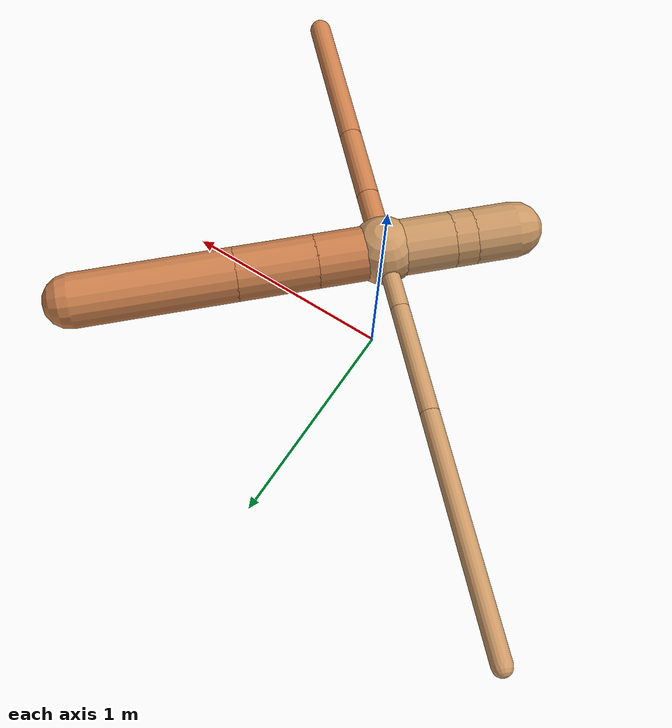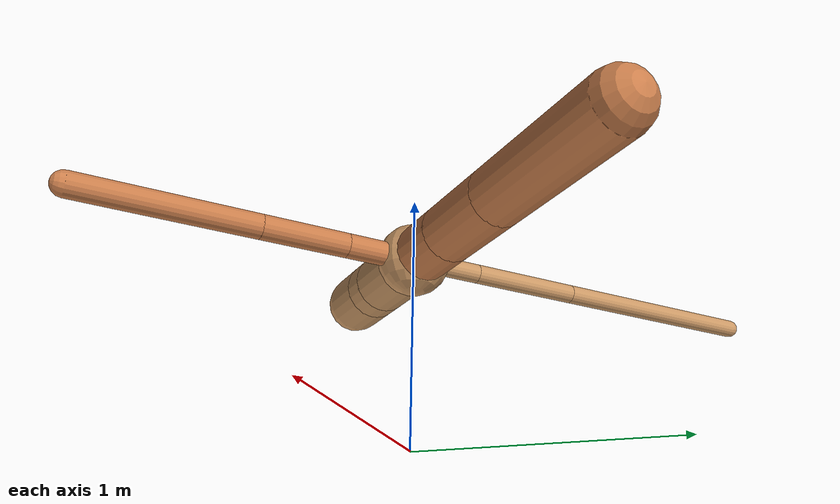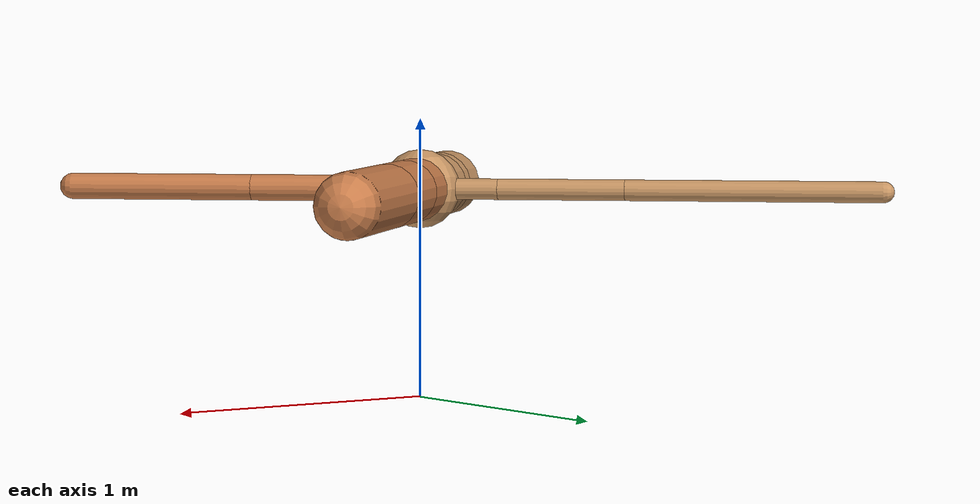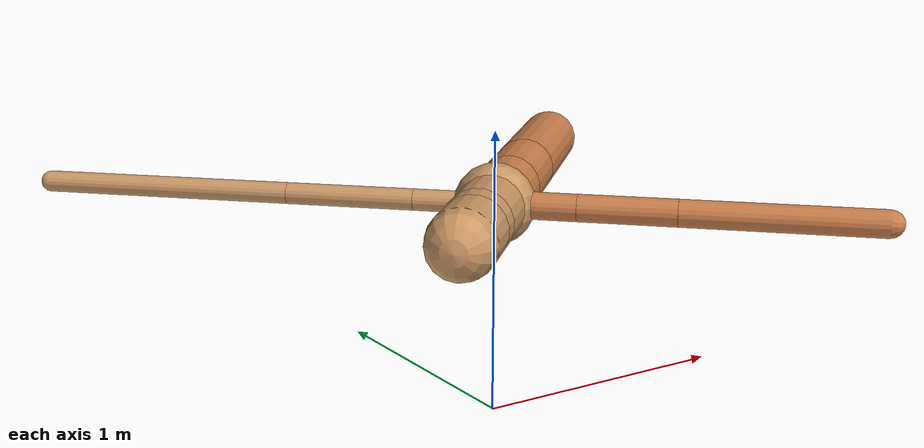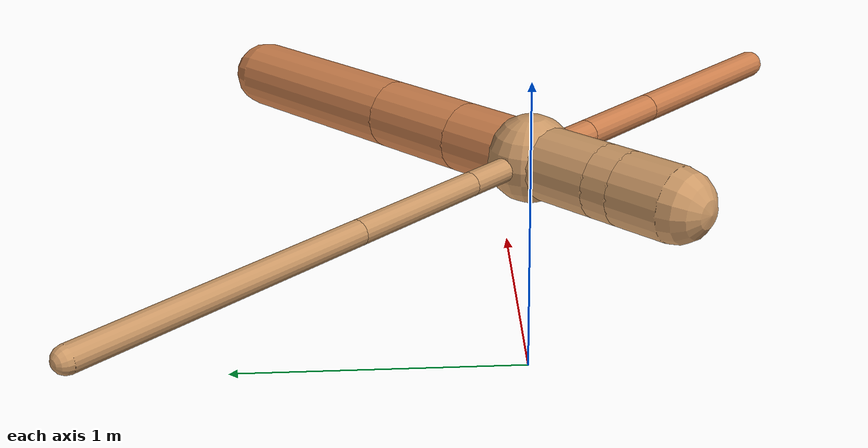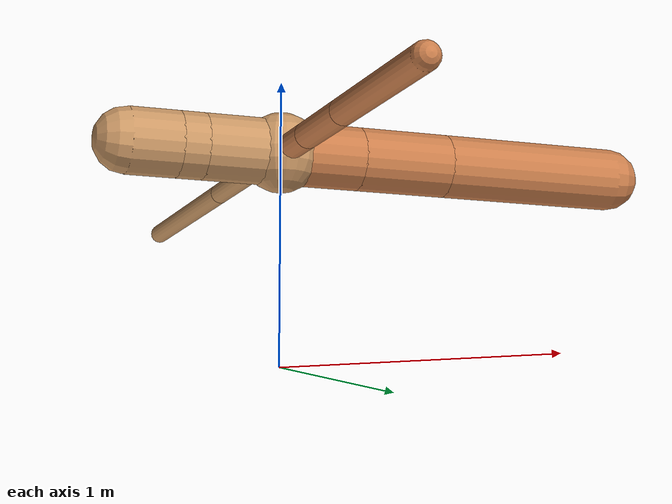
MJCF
<?xml version="1.0" ?>
<mujoco model="ant">

	<compiler angle="degree" coordinate="local" inertiafromgeom="true"/>

	<option integrator="RK4" timestep="0.01"/>

	<custom>

		<numeric data="0.0 0.0 0.55 1.0 0.0 0.0 0.0 0.0 1.0 0.0 -1.0 0.0 -1.0 0.0 1.0" name="init_qpos"/>

	</custom>

	<default>

		<joint armature="1" damping="1" limited="true"/>

		<geom conaffinity="0" condim="3" density="5.0" friction="1.5 0.1 0.1" margin="0.01" rgba="0.8 0.6 0.4 1"/>

	</default>

	<worldbody>

		<body name="torso" pos="0 0 0.75">

			<geom name="torso_geom" pos="0 0 0" size="0.14114810883831574" type="sphere"/>

			<!--joint armature="0" damping="0" limited="false" margin="0.01" name="root" pos="0 0 0" type="free"/-->

			<body name="front_left_leg" pos="0 0 0">

				<geom fromto="0 0 0 0.2 0.2 0" name="aux_1_geom" size="0.11291878633420847" type="capsule" rgba=".8 .5 .3 1"/>

				<body name="aux_1" pos="0.2 0.2 0">

					<joint axis="0 0 1" name="hip_1" pos="0.0 0.0 0.0" range="-40 40" type="hinge"/>

					<geom fromto="0 0 0 0.23382970327406616 0.23382970327406616 0" name="left_leg_geom" size="0.11291878633420847" type="capsule" rgba=".8 .5 .3 1"/>

					<body pos="0.23382970327406616 0.23382970327406616 0" name="front_left_foot">

						<joint axis="-1 1 0" name="ankle_1" pos="0.0 0.0 0.0" range="30 100" type="hinge"/>

						<geom fromto="0 0 0 0.4676594065481323 0.4676594065481323 0" name="left_ankle_geom" size="0.11291878633420847" type="capsule" rgba=".8 .5 .3 1"/>

					</body>

				</body>

			</body>

			<body name="front_right_leg" pos="0 0 0">

				<geom fromto="0 0 0 -0.2 0.2 0" name="aux_2_geom" size="0.03786041188898108" type="capsule"/>

				<body name="aux_2" pos="-0.2 0.2 0">

					<joint axis="0 0 1" name="hip_2" pos="0.0 0.0 0.0" range="-40 40" type="hinge"/>

					<geom fromto="0 0 0 -0.32345937006672626 0.32345937006672626 0" name="right_leg_geom" size="0.03786041188898108" type="capsule"/>

					<body pos="-0.32345937006672626 0.32345937006672626 0" name="front_right_foot">

						<joint axis="1 1 0" name="ankle_2" pos="0.0 0.0 0.0" range="-100 -30" type="hinge"/>

						<geom fromto="0 0 0 -0.6469187401334525 0.6469187401334525 0" name="right_ankle_geom" size="0.03786041188898108" type="capsule"/>

					</body>

				</body>

			</body>

			<body name="left_back_leg" pos="0 0 0">

				<geom fromto="0 0 0 -0.2 -0.2 0" name="aux_3_geom" size="0.11714422274795805" type="capsule"/>

				<body name="aux_3" pos="-0.2 -0.2 0">

					<joint axis="0 0 1" name="hip_3" pos="0.0 0.0 0.0" range="-40 40" type="hinge"/>

					<geom fromto="0 0 0 -0.06343370406859926 -0.06343370406859926 0" name="back_leg_geom" size="0.11714422274795805" type="capsule"/>

					<body pos="-0.06343370406859926 -0.06343370406859926 0" name="left_back_foot">

						<joint axis="-1 1 0" name="ankle_3" pos="0.0 0.0 0.0" range="-100 -30" type="hinge"/>

						<geom fromto="0 0 0 -0.12686740813719852 -0.12686740813719852 0" name="third_ankle_geom" size="0.11714422274795805" type="capsule"/>

					</body>

				</body>

			</body>

			<body name="right_back_leg" pos="0 0 0">

				<geom fromto="0 0 0 0.2 -0.2 0" name="aux_4_geom" size="0.04733844552305516" type="capsule" rgba=".8 .5 .3 1"/>

				<body name="aux_4" pos="0.2 -0.2 0">

					<joint axis="0 0 1" name="hip_4" pos="0.0 0.0 0.0" range="-40 40" type="hinge"/>

					<geom fromto="0 0 0 0.2369996456943592 -0.2369996456943592 0" name="rightback_leg_geom" size="0.04733844552305516" type="capsule" rgba=".8 .5 .3 1"/>

					<body pos="0.2369996456943592 -0.2369996456943592 0" name="right_back_foot">

						<joint axis="1 1 0" name="ankle_4" pos="0.0 0.0 0.0" range="30 100" type="hinge"/>

						<geom fromto="0 0 0 0.4739992913887184 -0.4739992913887184 0" name="fourth_ankle_geom" size="0.04733844552305516" type="capsule" rgba=".8 .5 .3 1"/>

					</body>

				</body>

			</body>

		</body>

	</worldbody>

	<actuator>

		<motor ctrllimited="true" ctrlrange="-1.0 1.0" joint="hip_4" gear="150"/>

		<motor ctrllimited="true" ctrlrange="-1.0 1.0" joint="ankle_4" gear="150"/>

		<motor ctrllimited="true" ctrlrange="-1.0 1.0" joint="hip_1" gear="150"/>

		<motor ctrllimited="true" ctrlrange="-1.0 1.0" joint="ankle_1" gear="150"/>

		<motor ctrllimited="true" ctrlrange="-1.0 1.0" joint="hip_2" gear="150"/>

		<motor ctrllimited="true" ctrlrange="-1.0 1.0" joint="ankle_2" gear="150"/>

		<motor ctrllimited="true" ctrlrange="-1.0 1.0" joint="hip_3" gear="150"/>

		<motor ctrllimited="true" ctrlrange="-1.0 1.0" joint="ankle_3" gear="150"/>

	</actuator>

</mujoco>
